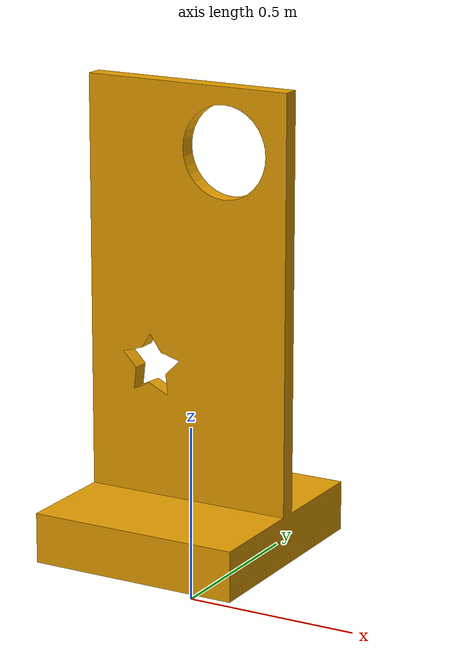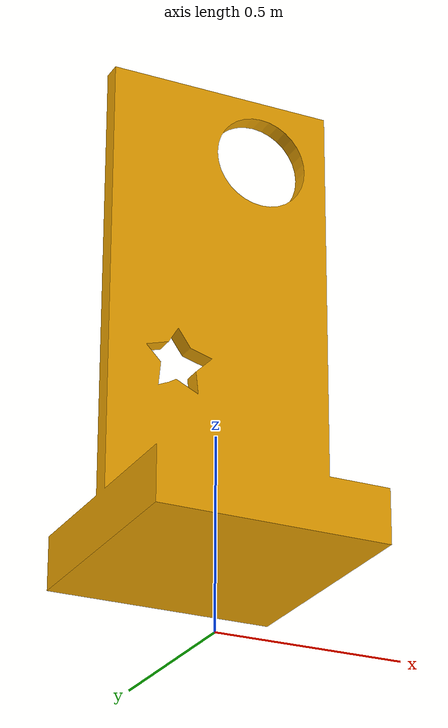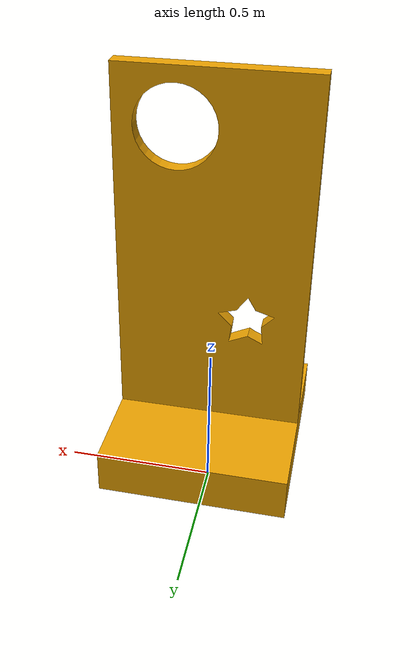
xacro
<?xml version="1.0"?>
<robot name="gman_target" xmlns:xacro="http://www.ros.org/wiki/xacro">
    <xacro:property name="visual_mesh_file" value="file://$(find props_gazebo)/meshes/gman.dae" />
    <link name="base_link">
        <visual>
            <origin xyz="0.0 0.0 0.23" rpy="0.0 0.0 0.0"/>
            <geometry>
                <mesh filename="${visual_mesh_file}" scale="0.3 0.3 0.3"/>
            </geometry>
        </visual>

        <collision>
            <origin xyz="0 0 0.23" rpy="0 0 0"/>
            <geometry>
                <mesh filename="${visual_mesh_file}" scale="0.3 0.3 0.3"/>
            </geometry>
        </collision>

        <inertial>
        <origin xyz="0 0 0.5" rpy="0 0 0"/>
        <mass value="10"/>
        <inertia
            ixx="1.0" ixy="0.0" ixz="0.0"
            iyy="1.0" iyz="0.0"
            izz="1.0"/>
        </inertial>
    </link>

</robot>
